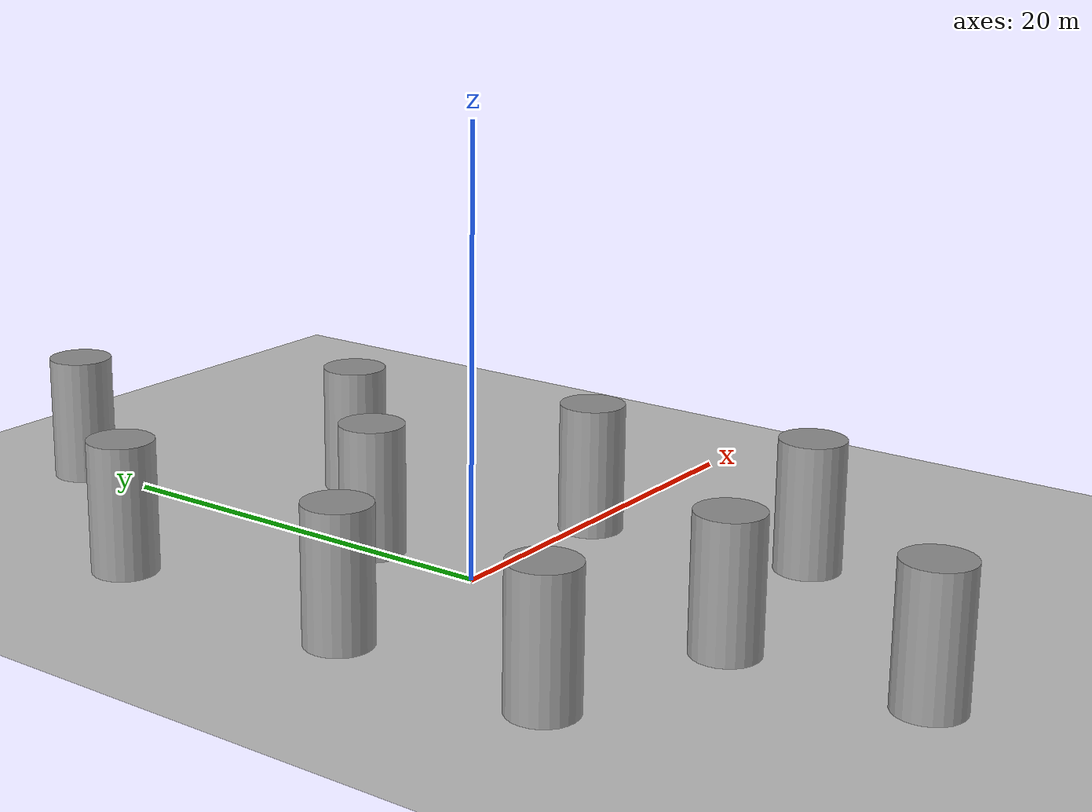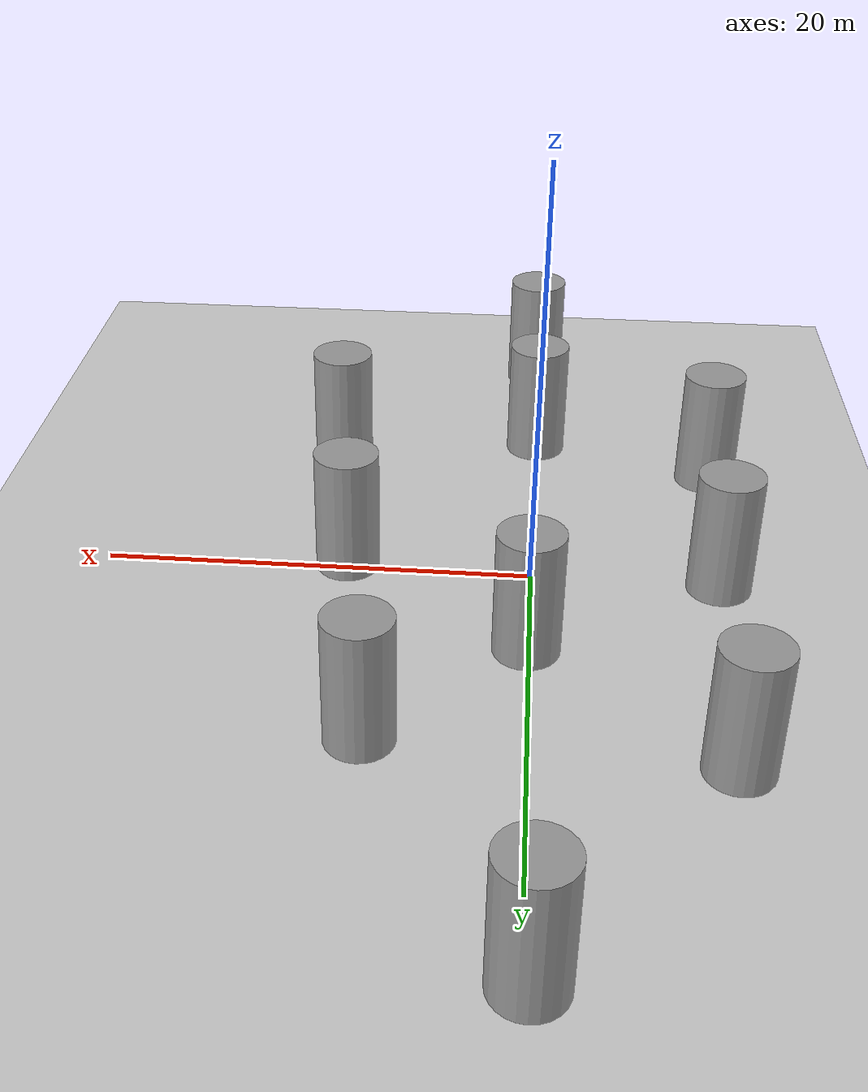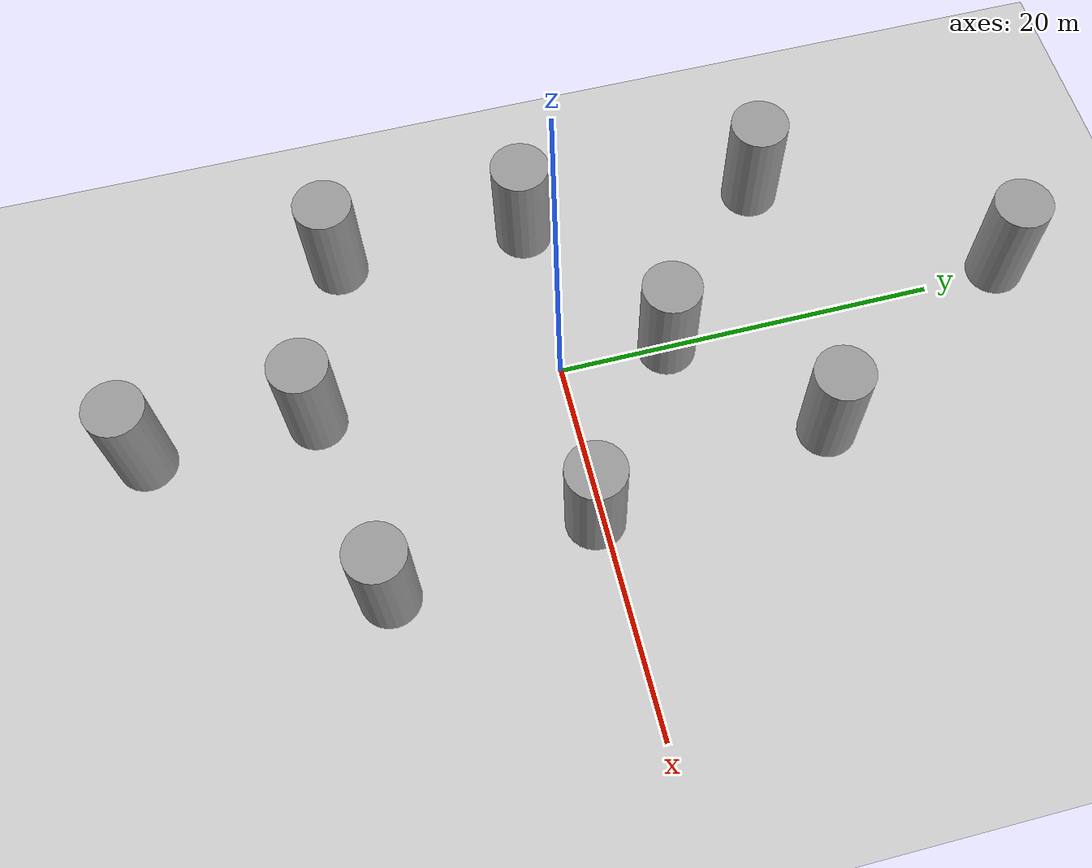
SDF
<sdf version="1.6">
 <world name="test_cylinder">
  <spherical_coordinates>
   <surface_model>EARTH_WGS84</surface_model>
   <latitude_deg>47.3667</latitude_deg>
   <longitude_deg>8.5500</longitude_deg>
   <elevation>500.0</elevation>
   <heading_deg>0</heading_deg>
  </spherical_coordinates>
  <physics type="ode">
   <ode>
    <solver><type>quick</type><iters>1000</iters><sor>1.3</sor></solver>
    <constraints>
     <cfm>0</cfm>
     <erp>0.2</erp>
     <contact_max_correcting_vel>100</contact_max_correcting_vel>
     <contact_surface_layer>0.001</contact_surface_layer>
    </constraints>
   </ode>
   <max_step_size>0.01</max_step_size>
   <real_time_factor>1</real_time_factor>
   <real_time_update_rate>100</real_time_update_rate>
   <gravity>0 0 -9.8</gravity>
  </physics>
  <light name="sun" type="directional">
   <pose>0 0 10 0 -0 0</pose>
   <diffuse>0.8 0.8 0.8 1</diffuse>
   <specular>0.2 0.2 0.2 1</specular>
   <attenuation>
    <range>1000</range>
    <constant>0.9</constant>
    <linear>0.01</linear>
    <quadratic>0.001</quadratic>
   </attenuation>
   <direction>-0.5 0.1 -0.9</direction>
  </light>
  <model name="ground_plane">
   <static>1</static>
   <link name="link">
    <collision name="collision">
     <geometry><plane><normal>0 0 1</normal><size>100 100</size></plane></geometry>
     <surface>
      <contact><collide_bitmask>65535</collide_bitmask></contact>
      <friction><ode><mu>100</mu><mu2>50</mu2></ode></friction>
     </surface>
    </collision>
    <visual name="visual">
     <cast_shadows>0</cast_shadows>
     <geometry><plane><normal>0 0 1</normal><size>100 100</size></plane></geometry>
     <material>
      <script><uri>file://media/materials/scripts/gazebo.material</uri><name>Gazebo/Grey</name></script>
     </material>
    </visual>
   </link>
  </model>
  <gravity>0 0 -9.8</gravity>
  <magnetic_field>6e-06 2.3e-05 -4.2e-05</magnetic_field>
  <atmosphere type="adiabatic"/>
  <physics name="default_physics" default="0" type="ode">
   <max_step_size>0.001</max_step_size>
   <real_time_factor>1</real_time_factor>
   <real_time_update_rate>1000</real_time_update_rate>
  </physics>
  <scene><ambient>0.4 0.4 0.4 1</ambient><background>0.7 0.7 0.7 1</background><shadows>1</shadows></scene>
  <audio><device>default</device></audio>
  <model name="cylinder">
   <link name="link_0">
    <inertial>
     <mass>1</mass>
     <inertia><ixx>0.145833</ixx><ixy>0</ixy><ixz>0</ixz><iyy>0.145833</iyy><iyz>0</iyz><izz>0.125</izz></inertia>
    </inertial>
    <visual name="visual">
     <geometry><cylinder><radius>1.5</radius><length>6</length></cylinder></geometry>
     <material>
      <lighting>1</lighting>
      <script><uri>file://media/materials/scripts/gazebo.material</uri><name>Gazebo/Grey</name></script>
     </material>
    </visual>
    <collision name="collision">
     <geometry><cylinder><radius>1.5</radius><length>6</length></cylinder></geometry>
     <surface>
      <friction>
       <ode><mu>1</mu><mu2>1</mu2><fdir1>0 0 0</fdir1><slip1>0</slip1><slip2>0</slip2></ode>
       <torsional>
        <coefficient>1</coefficient>
        <patch_radius>0</patch_radius>
        <surface_radius>0</surface_radius>
        <use_patch_radius>1</use_patch_radius>
        <ode><slip>0</slip></ode>
       </torsional>
      </friction>
      <bounce><restitution_coefficient>0</restitution_coefficient><threshold>1e+06</threshold></bounce>
      <contact>
       <collide_without_contact>0</collide_without_contact>
       <collide_without_contact_bitmask>1</collide_without_contact_bitmask>
       <collide_bitmask>1</collide_bitmask>
       <ode>
        <soft_cfm>0</soft_cfm>
        <soft_erp>0.2</soft_erp>
        <kp>1e+13</kp>
        <kd>1</kd>
        <max_vel>0.01</max_vel>
        <min_depth>0</min_depth>
       </ode>
       <bullet>
        <split_impulse>1</split_impulse>
        <split_impulse_penetration_threshold>-0.01</split_impulse_penetration_threshold>
        <soft_cfm>0</soft_cfm>
        <soft_erp>0.2</soft_erp>
        <kp>1e+13</kp>
        <kd>1</kd>
       </bullet>
      </contact>
     </surface>
    </collision>
   </link>
   <static>0</static>
   <pose>0.122579 5.63171 2.99999 0 -0 0.004952</pose>
  </model>
  <model name="cylinder_0">
   <link name="link_0">
    <inertial>
     <mass>1</mass>
     <inertia><ixx>0.145833</ixx><ixy>0</ixy><ixz>0</ixz><iyy>0.145833</iyy><iyz>0</iyz><izz>0.125</izz></inertia>
    </inertial>
    <visual name="visual">
     <geometry><cylinder><radius>1.5</radius><length>6</length></cylinder></geometry>
     <material>
      <lighting>1</lighting>
      <script><uri>file://media/materials/scripts/gazebo.material</uri><name>Gazebo/Grey</name></script>
     </material>
    </visual>
    <collision name="collision">
     <geometry><cylinder><radius>1.5</radius><length>6</length></cylinder></geometry>
     <surface>
      <friction>
       <ode><mu>1</mu><mu2>1</mu2><fdir1>0 0 0</fdir1><slip1>0</slip1><slip2>0</slip2></ode>
       <torsional>
        <coefficient>1</coefficient>
        <patch_radius>0</patch_radius>
        <surface_radius>0</surface_radius>
        <use_patch_radius>1</use_patch_radius>
        <ode><slip>0</slip></ode>
       </torsional>
      </friction>
      <bounce><restitution_coefficient>0</restitution_coefficient><threshold>1e+06</threshold></bounce>
      <contact>
       <collide_without_contact>0</collide_without_contact>
       <collide_without_contact_bitmask>1</collide_without_contact_bitmask>
       <collide_bitmask>1</collide_bitmask>
       <ode>
        <soft_cfm>0</soft_cfm>
        <soft_erp>0.2</soft_erp>
        <kp>1e+13</kp>
        <kd>1</kd>
        <max_vel>0.01</max_vel>
        <min_depth>0</min_depth>
       </ode>
       <bullet>
        <split_impulse>1</split_impulse>
        <split_impulse_penetration_threshold>-0.01</split_impulse_penetration_threshold>
        <soft_cfm>0</soft_cfm>
        <soft_erp>0.2</soft_erp>
        <kp>1e+13</kp>
        <kd>1</kd>
       </bullet>
      </contact>
     </surface>
    </collision>
   </link>
   <static>0</static>
   <pose>-8.67324 0.096508 2.99999 0 -0 0.00506</pose>
  </model>
  <model name="cylinder_1">
   <link name="link_0">
    <inertial>
     <mass>1</mass>
     <inertia><ixx>0.145833</ixx><ixy>0</ixy><ixz>0</ixz><iyy>0.145833</iyy><iyz>0</iyz><izz>0.125</izz></inertia>
    </inertial>
    <visual name="visual">
     <geometry><cylinder><radius>1.5</radius><length>6</length></cylinder></geometry>
     <material>
      <lighting>1</lighting>
      <script><uri>file://media/materials/scripts/gazebo.material</uri><name>Gazebo/Grey</name></script>
     </material>
    </visual>
    <collision name="collision">
     <geometry><cylinder><radius>1.5</radius><length>6</length></cylinder></geometry>
     <surface>
      <friction>
       <ode><mu>1</mu><mu2>1</mu2><fdir1>0 0 0</fdir1><slip1>0</slip1><slip2>0</slip2></ode>
       <torsional>
        <coefficient>1</coefficient>
        <patch_radius>0</patch_radius>
        <surface_radius>0</surface_radius>
        <use_patch_radius>1</use_patch_radius>
        <ode><slip>0</slip></ode>
       </torsional>
      </friction>
      <bounce><restitution_coefficient>0</restitution_coefficient><threshold>1e+06</threshold></bounce>
      <contact>
       <collide_without_contact>0</collide_without_contact>
       <collide_without_contact_bitmask>1</collide_without_contact_bitmask>
       <collide_bitmask>1</collide_bitmask>
       <ode>
        <soft_cfm>0</soft_cfm>
        <soft_erp>0.2</soft_erp>
        <kp>1e+13</kp>
        <kd>1</kd>
        <max_vel>0.01</max_vel>
        <min_depth>0</min_depth>
       </ode>
       <bullet>
        <split_impulse>1</split_impulse>
        <split_impulse_penetration_threshold>-0.01</split_impulse_penetration_threshold>
        <soft_cfm>0</soft_cfm>
        <soft_erp>0.2</soft_erp>
        <kp>1e+13</kp>
        <kd>1</kd>
       </bullet>
      </contact>
     </surface>
    </collision>
   </link>
   <static>0</static>
   <pose>8.61713 -0.392482 3 0 -0 0.005062</pose>
  </model>
  <model name="cylinder_2">
   <link name="link_0">
    <inertial>
     <mass>1</mass>
     <inertia><ixx>0.145833</ixx><ixy>0</ixy><ixz>0</ixz><iyy>0.145833</iyy><iyz>0</iyz><izz>0.125</izz></inertia>
    </inertial>
    <visual name="visual">
     <geometry><cylinder><radius>1.5</radius><length>6</length></cylinder></geometry>
     <material>
      <lighting>1</lighting>
      <script><uri>file://media/materials/scripts/gazebo.material</uri><name>Gazebo/Grey</name></script>
     </material>
    </visual>
    <collision name="collision">
     <geometry><cylinder><radius>1.5</radius><length>6</length></cylinder></geometry>
     <surface>
      <friction>
       <ode><mu>1</mu><mu2>1</mu2><fdir1>0 0 0</fdir1><slip1>0</slip1><slip2>0</slip2></ode>
       <torsional>
        <coefficient>1</coefficient>
        <patch_radius>0</patch_radius>
        <surface_radius>0</surface_radius>
        <use_patch_radius>1</use_patch_radius>
        <ode><slip>0</slip></ode>
       </torsional>
      </friction>
      <bounce><restitution_coefficient>0</restitution_coefficient><threshold>1e+06</threshold></bounce>
      <contact>
       <collide_without_contact>0</collide_without_contact>
       <collide_without_contact_bitmask>1</collide_without_contact_bitmask>
       <collide_bitmask>1</collide_bitmask>
       <ode>
        <soft_cfm>0</soft_cfm>
        <soft_erp>0.2</soft_erp>
        <kp>1e+13</kp>
        <kd>1</kd>
        <max_vel>0.01</max_vel>
        <min_depth>0</min_depth>
       </ode>
       <bullet>
        <split_impulse>1</split_impulse>
        <split_impulse_penetration_threshold>-0.01</split_impulse_penetration_threshold>
        <soft_cfm>0</soft_cfm>
        <soft_erp>0.2</soft_erp>
        <kp>1e+13</kp>
        <kd>1</kd>
       </bullet>
      </contact>
     </surface>
    </collision>
   </link>
   <static>0</static>
   <pose>6.68049 12.1536 3 0 -0 0.00496</pose>
  </model>
  <model name="cylinder_3">
   <link name="link_0">
    <inertial>
     <mass>1</mass>
     <inertia><ixx>0.145833</ixx><ixy>0</ixy><ixz>0</ixz><iyy>0.145833</iyy><iyz>0</iyz><izz>0.125</izz></inertia>
    </inertial>
    <visual name="visual">
     <geometry><cylinder><radius>1.5</radius><length>6</length></cylinder></geometry>
     <material>
      <lighting>1</lighting>
      <script><uri>file://media/materials/scripts/gazebo.material</uri><name>Gazebo/Grey</name></script>
     </material>
    </visual>
    <collision name="collision">
     <geometry><cylinder><radius>1.5</radius><length>6</length></cylinder></geometry>
     <surface>
      <friction>
       <ode><mu>1</mu><mu2>1</mu2><fdir1>0 0 0</fdir1><slip1>0</slip1><slip2>0</slip2></ode>
       <torsional>
        <coefficient>1</coefficient>
        <patch_radius>0</patch_radius>
        <surface_radius>0</surface_radius>
        <use_patch_radius>1</use_patch_radius>
        <ode><slip>0</slip></ode>
       </torsional>
      </friction>
      <bounce><restitution_coefficient>0</restitution_coefficient><threshold>1e+06</threshold></bounce>
      <contact>
       <collide_without_contact>0</collide_without_contact>
       <collide_without_contact_bitmask>1</collide_without_contact_bitmask>
       <collide_bitmask>1</collide_bitmask>
       <ode>
        <soft_cfm>0</soft_cfm>
        <soft_erp>0.2</soft_erp>
        <kp>1e+13</kp>
        <kd>1</kd>
        <max_vel>0.01</max_vel>
        <min_depth>0</min_depth>
       </ode>
       <bullet>
        <split_impulse>1</split_impulse>
        <split_impulse_penetration_threshold>-0.01</split_impulse_penetration_threshold>
        <soft_cfm>0</soft_cfm>
        <soft_erp>0.2</soft_erp>
        <kp>1e+13</kp>
        <kd>1</kd>
       </bullet>
      </contact>
     </surface>
    </collision>
   </link>
   <static>0</static>
   <pose>-8.25967 12.7253 2.99999 0 -0 0.004959</pose>
  </model>
  <model name="cylinder_4">
   <link name="link_0">
    <inertial>
     <mass>1</mass>
     <inertia><ixx>0.145833</ixx><ixy>0</ixy><ixz>0</ixz><iyy>0.145833</iyy><iyz>0</iyz><izz>0.125</izz></inertia>
    </inertial>
    <visual name="visual">
     <geometry><cylinder><radius>1.5</radius><length>6</length></cylinder></geometry>
     <material>
      <lighting>1</lighting>
      <script><uri>file://media/materials/scripts/gazebo.material</uri><name>Gazebo/Grey</name></script>
     </material>
    </visual>
    <collision name="collision">
     <geometry><cylinder><radius>1.5</radius><length>6</length></cylinder></geometry>
     <surface>
      <friction>
       <ode><mu>1</mu><mu2>1</mu2><fdir1>0 0 0</fdir1><slip1>0</slip1><slip2>0</slip2></ode>
       <torsional>
        <coefficient>1</coefficient>
        <patch_radius>0</patch_radius>
        <surface_radius>0</surface_radius>
        <use_patch_radius>1</use_patch_radius>
        <ode><slip>0</slip></ode>
       </torsional>
      </friction>
      <bounce><restitution_coefficient>0</restitution_coefficient><threshold>1e+06</threshold></bounce>
      <contact>
       <collide_without_contact>0</collide_without_contact>
       <collide_without_contact_bitmask>1</collide_without_contact_bitmask>
       <collide_bitmask>1</collide_bitmask>
       <ode>
        <soft_cfm>0</soft_cfm>
        <soft_erp>0.2</soft_erp>
        <kp>1e+13</kp>
        <kd>1</kd>
        <max_vel>0.01</max_vel>
        <min_depth>0</min_depth>
       </ode>
       <bullet>
        <split_impulse>1</split_impulse>
        <split_impulse_penetration_threshold>-0.01</split_impulse_penetration_threshold>
        <soft_cfm>0</soft_cfm>
        <soft_erp>0.2</soft_erp>
        <kp>1e+13</kp>
        <kd>1</kd>
       </bullet>
      </contact>
     </surface>
    </collision>
   </link>
   <static>0</static>
   <pose>-8.8775 -9.9714 3 1e-06 1e-06 0.00501</pose>
  </model>
  <model name="cylinder_5">
   <link name="link_0">
    <inertial>
     <mass>1</mass>
     <inertia><ixx>0.145833</ixx><ixy>0</ixy><ixz>0</ixz><iyy>0.145833</iyy><iyz>0</iyz><izz>0.125</izz></inertia>
    </inertial>
    <visual name="visual">
     <geometry><cylinder><radius>1.5</radius><length>6</length></cylinder></geometry>
     <material>
      <lighting>1</lighting>
      <script><uri>file://media/materials/scripts/gazebo.material</uri><name>Gazebo/Grey</name></script>
     </material>
    </visual>
    <collision name="collision">
     <geometry><cylinder><radius>1.5</radius><length>6</length></cylinder></geometry>
     <surface>
      <friction>
       <ode><mu>1</mu><mu2>1</mu2><fdir1>0 0 0</fdir1><slip1>0</slip1><slip2>0</slip2></ode>
       <torsional>
        <coefficient>1</coefficient>
        <patch_radius>0</patch_radius>
        <surface_radius>0</surface_radius>
        <use_patch_radius>1</use_patch_radius>
        <ode><slip>0</slip></ode>
       </torsional>
      </friction>
      <bounce><restitution_coefficient>0</restitution_coefficient><threshold>1e+06</threshold></bounce>
      <contact>
       <collide_without_contact>0</collide_without_contact>
       <collide_without_contact_bitmask>1</collide_without_contact_bitmask>
       <collide_bitmask>1</collide_bitmask>
       <ode>
        <soft_cfm>0</soft_cfm>
        <soft_erp>0.2</soft_erp>
        <kp>1e+13</kp>
        <kd>1</kd>
        <max_vel>0.01</max_vel>
        <min_depth>0</min_depth>
       </ode>
       <bullet>
        <split_impulse>1</split_impulse>
        <split_impulse_penetration_threshold>-0.01</split_impulse_penetration_threshold>
        <soft_cfm>0</soft_cfm>
        <soft_erp>0.2</soft_erp>
        <kp>1e+13</kp>
        <kd>1</kd>
       </bullet>
      </contact>
     </surface>
    </collision>
   </link>
   <static>0</static>
   <pose>10.0462 -10.8294 2.99999 0 -0 0.004963</pose>
  </model>
  <model name="cylinder_6">
   <link name="link_0">
    <inertial>
     <mass>1</mass>
     <inertia><ixx>0.145833</ixx><ixy>0</ixy><ixz>0</ixz><iyy>0.145833</iyy><iyz>0</iyz><izz>0.125</izz></inertia>
    </inertial>
    <visual name="visual">
     <geometry><cylinder><radius>1.5</radius><length>6</length></cylinder></geometry>
     <material>
      <lighting>1</lighting>
      <script><uri>file://media/materials/scripts/gazebo.material</uri><name>Gazebo/Grey</name></script>
     </material>
    </visual>
    <collision name="collision">
     <geometry><cylinder><radius>1.5</radius><length>6</length></cylinder></geometry>
     <surface>
      <friction>
       <ode><mu>1</mu><mu2>1</mu2><fdir1>0 0 0</fdir1><slip1>0</slip1><slip2>0</slip2></ode>
       <torsional>
        <coefficient>1</coefficient>
        <patch_radius>0</patch_radius>
        <surface_radius>0</surface_radius>
        <use_patch_radius>1</use_patch_radius>
        <ode><slip>0</slip></ode>
       </torsional>
      </friction>
      <bounce><restitution_coefficient>0</restitution_coefficient><threshold>1e+06</threshold></bounce>
      <contact>
       <collide_without_contact>0</collide_without_contact>
       <collide_without_contact_bitmask>1</collide_without_contact_bitmask>
       <collide_bitmask>1</collide_bitmask>
       <ode>
        <soft_cfm>0</soft_cfm>
        <soft_erp>0.2</soft_erp>
        <kp>1e+13</kp>
        <kd>1</kd>
        <max_vel>0.01</max_vel>
        <min_depth>0</min_depth>
       </ode>
       <bullet>
        <split_impulse>1</split_impulse>
        <split_impulse_penetration_threshold>-0.01</split_impulse_penetration_threshold>
        <soft_cfm>0</soft_cfm>
        <soft_erp>0.2</soft_erp>
        <kp>1e+13</kp>
        <kd>1</kd>
       </bullet>
      </contact>
     </surface>
    </collision>
   </link>
   <static>0</static>
   <pose>-0.232036 23.9621 3 1e-06 0 0.004969</pose>
  </model>
  <model name="cylinder_7">
   <link name="link_0">
    <inertial>
     <mass>1</mass>
     <inertia><ixx>0.145833</ixx><ixy>0</ixy><ixz>0</ixz><iyy>0.145833</iyy><iyz>0</iyz><izz>0.125</izz></inertia>
    </inertial>
    <visual name="visual">
     <geometry><cylinder><radius>1.5</radius><length>6</length></cylinder></geometry>
     <material>
      <lighting>1</lighting>
      <script><uri>file://media/materials/scripts/gazebo.material</uri><name>Gazebo/Grey</name></script>
     </material>
    </visual>
    <collision name="collision">
     <geometry><cylinder><radius>1.5</radius><length>6</length></cylinder></geometry>
     <surface>
      <friction>
       <ode><mu>1</mu><mu2>1</mu2><fdir1>0 0 0</fdir1><slip1>0</slip1><slip2>0</slip2></ode>
       <torsional>
        <coefficient>1</coefficient>
        <patch_radius>0</patch_radius>
        <surface_radius>0</surface_radius>
        <use_patch_radius>1</use_patch_radius>
        <ode><slip>0</slip></ode>
       </torsional>
      </friction>
      <bounce><restitution_coefficient>0</restitution_coefficient><threshold>1e+06</threshold></bounce>
      <contact>
       <collide_without_contact>0</collide_without_contact>
       <collide_without_contact_bitmask>1</collide_without_contact_bitmask>
       <collide_bitmask>1</collide_bitmask>
       <ode>
        <soft_cfm>0</soft_cfm>
        <soft_erp>0.2</soft_erp>
        <kp>1e+13</kp>
        <kd>1</kd>
        <max_vel>0.01</max_vel>
        <min_depth>0</min_depth>
       </ode>
       <bullet>
        <split_impulse>1</split_impulse>
        <split_impulse_penetration_threshold>-0.01</split_impulse_penetration_threshold>
        <soft_cfm>0</soft_cfm>
        <soft_erp>0.2</soft_erp>
        <kp>1e+13</kp>
        <kd>1</kd>
       </bullet>
      </contact>
     </surface>
    </collision>
   </link>
   <static>0</static>
   <pose>-0.097306 -12.6235 3 0 -1e-06 0.004976</pose>
  </model>
  <model name="cylinder_8">
   <link name="link_0">
    <inertial>
     <mass>1</mass>
     <inertia><ixx>0.145833</ixx><ixy>0</ixy><ixz>0</ixz><iyy>0.145833</iyy><iyz>0</iyz><izz>0.125</izz></inertia>
    </inertial>
    <visual name="visual">
     <geometry><cylinder><radius>1.5</radius><length>6</length></cylinder></geometry>
     <material>
      <lighting>1</lighting>
      <script><uri>file://media/materials/scripts/gazebo.material</uri><name>Gazebo/Grey</name></script>
     </material>
    </visual>
    <collision name="collision">
     <geometry><cylinder><radius>1.5</radius><length>6</length></cylinder></geometry>
     <surface>
      <friction>
       <ode><mu>1</mu><mu2>1</mu2><fdir1>0 0 0</fdir1><slip1>0</slip1><slip2>0</slip2></ode>
       <torsional>
        <coefficient>1</coefficient>
        <patch_radius>0</patch_radius>
        <surface_radius>0</surface_radius>
        <use_patch_radius>1</use_patch_radius>
        <ode><slip>0</slip></ode>
       </torsional>
      </friction>
      <bounce><restitution_coefficient>0</restitution_coefficient><threshold>1e+06</threshold></bounce>
      <contact>
       <collide_without_contact>0</collide_without_contact>
       <collide_without_contact_bitmask>1</collide_without_contact_bitmask>
       <collide_bitmask>1</collide_bitmask>
       <ode>
        <soft_cfm>0</soft_cfm>
        <soft_erp>0.2</soft_erp>
        <kp>1e+13</kp>
        <kd>1</kd>
        <max_vel>0.01</max_vel>
        <min_depth>0</min_depth>
       </ode>
       <bullet>
        <split_impulse>1</split_impulse>
        <split_impulse_penetration_threshold>-0.01</split_impulse_penetration_threshold>
        <soft_cfm>0</soft_cfm>
        <soft_erp>0.2</soft_erp>
        <kp>1e+13</kp>
        <kd>1</kd>
       </bullet>
      </contact>
     </surface>
    </collision>
   </link>
   <static>0</static>
   <pose>0.045186 -21.2169 2.99999 -0 1e-06 0.004982</pose>
  </model>
 </world>
</sdf>
